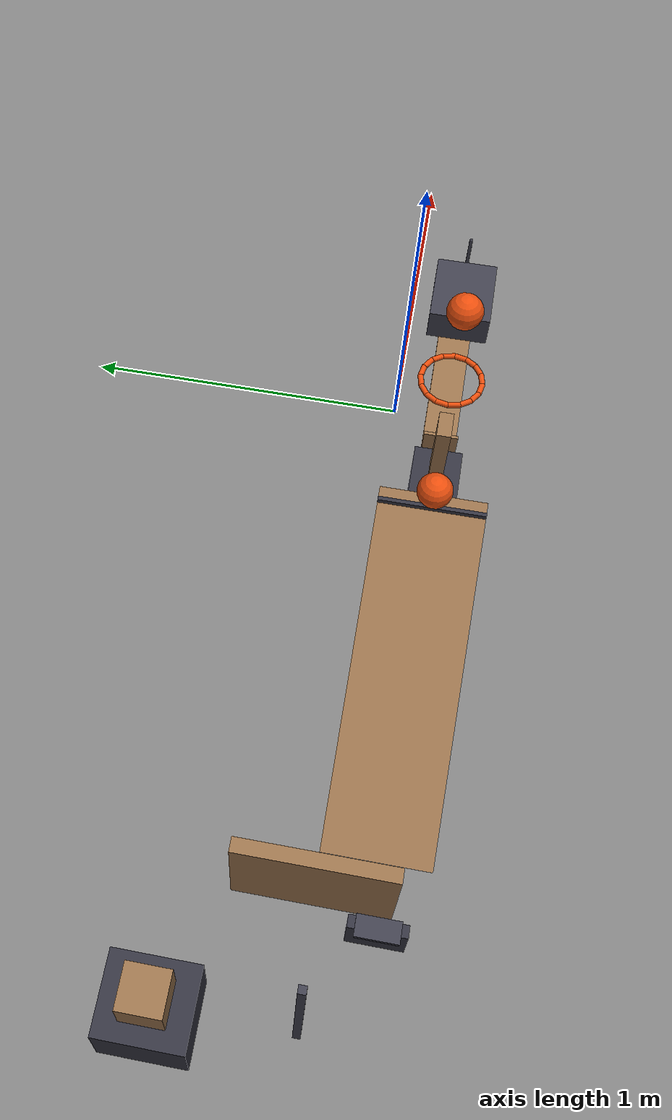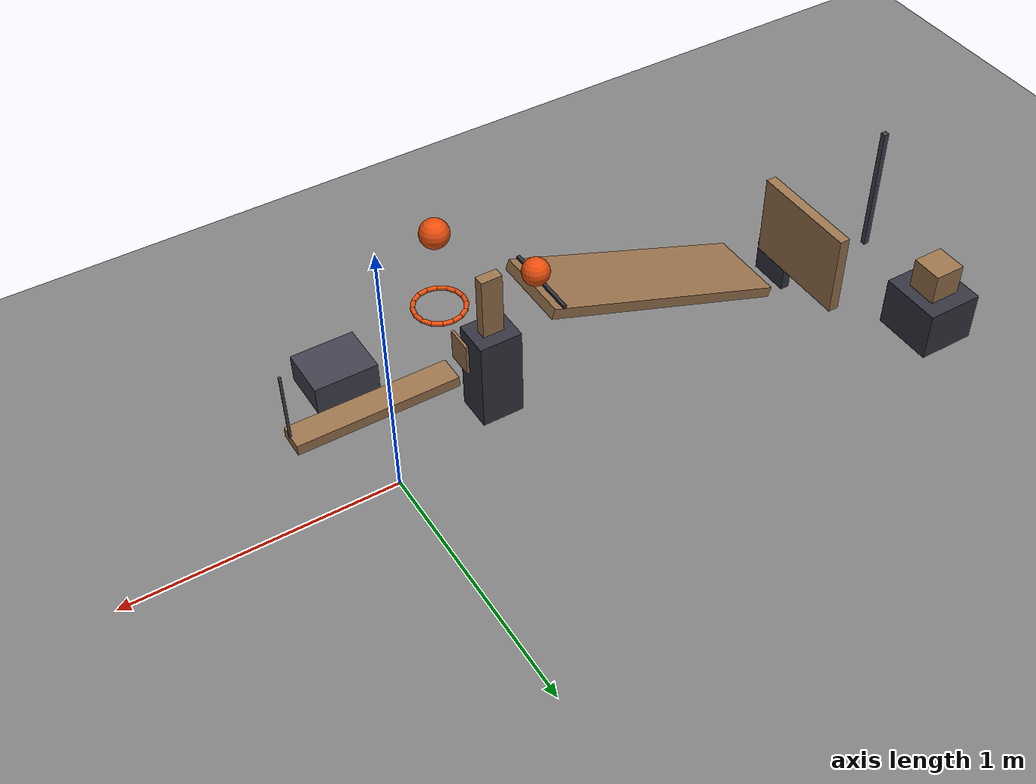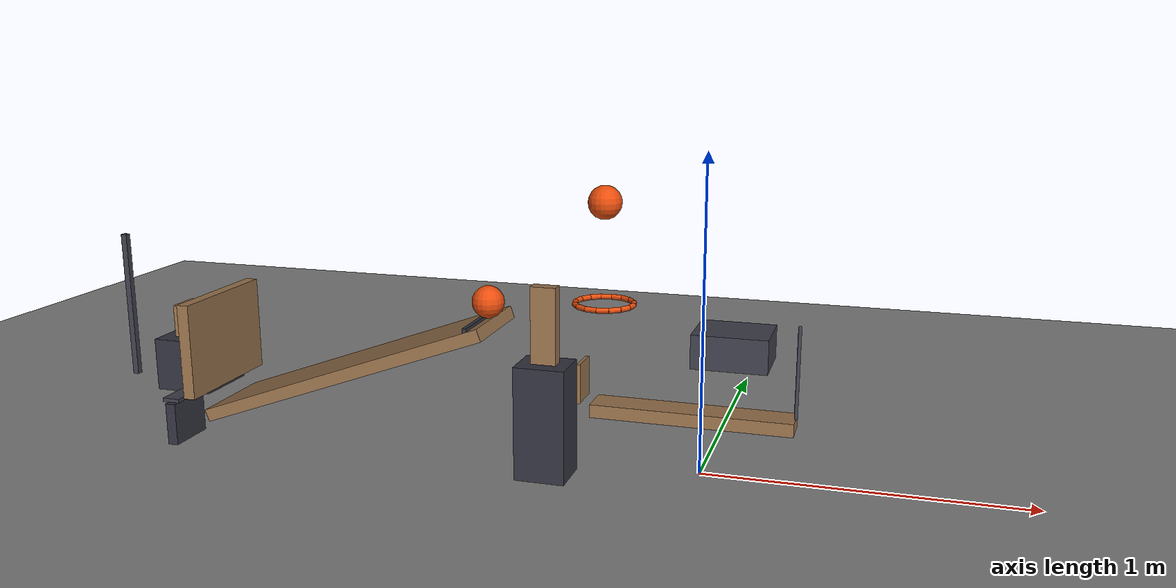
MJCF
<mujoco model="revised_gravity_driven_impact_chain">
  <compiler angle="radian"/>
  <option timestep="0.002"/>
  <worldbody>
    <geom name="floor" type="plane" size="6 6 0.1" friction="0.72 0 0"/>
    <body name="lever1" pos="0 -0.15 0.24">
      <joint name="lever_hinge" type="hinge" pos="0 0 0" axis="0 1 0" limited="true" range="-0.785398 0" damping="0.04"/>
      <geom name="lever1" type="box" pos="0 0 0" size="0.3 0.05 0.02" mass="0.485" friction="0.72 0 0" solref="0.01 0.715646" rgba="0.6 0.45 0.3 1"/>
      <geom name="lever striker" type="capsule" size="0.005" fromto="0.3 0 0.02 0.3 0 0.29" mass="0.01" friction="0.72 0 0" solref="0.01 0.715646" rgba="0.25 0.25 0.3 1"/>
      <geom name="lever retaining lip" type="box" pos="-0.335 0 0.08" size="0.005 0.05 0.06" mass="0.005" friction="0.72 0 0" solref="0.01 0.715646" rgba="0.6 0.45 0.3 1"/>
    </body>
    <body name="ring1">
      <geom name="ring1_00" type="capsule" size="0.008" fromto="-0.182 -0.15 0.56 -0.188699 -0.116324 0.56" friction="0.72 0 0" solref="0.01 0.715646" rgba="0.9 0.3 0.05 1"/>
      <geom name="ring1_01" type="capsule" size="0.008" fromto="-0.188699 -0.116324 0.56 -0.207775 -0.0877746 0.56" friction="0.72 0 0" solref="0.01 0.715646" rgba="0.9 0.3 0.05 1"/>
      <geom name="ring1_02" type="capsule" size="0.008" fromto="-0.207775 -0.0877746 0.56 -0.236324 -0.0686986 0.56" friction="0.72 0 0" solref="0.01 0.715646" rgba="0.9 0.3 0.05 1"/>
      <geom name="ring1_03" type="capsule" size="0.008" fromto="-0.236324 -0.0686986 0.56 -0.27 -0.062 0.56" friction="0.72 0 0" solref="0.01 0.715646" rgba="0.9 0.3 0.05 1"/>
      <geom name="ring1_04" type="capsule" size="0.008" fromto="-0.27 -0.062 0.56 -0.303676 -0.0686986 0.56" friction="0.72 0 0" solref="0.01 0.715646" rgba="0.9 0.3 0.05 1"/>
      <geom name="ring1_05" type="capsule" size="0.008" fromto="-0.303676 -0.0686986 0.56 -0.332225 -0.0877746 0.56" friction="0.72 0 0" solref="0.01 0.715646" rgba="0.9 0.3 0.05 1"/>
      <geom name="ring1_06" type="capsule" size="0.008" fromto="-0.332225 -0.0877746 0.56 -0.351301 -0.116324 0.56" friction="0.72 0 0" solref="0.01 0.715646" rgba="0.9 0.3 0.05 1"/>
      <geom name="ring1_07" type="capsule" size="0.008" fromto="-0.351301 -0.116324 0.56 -0.358 -0.15 0.56" friction="0.72 0 0" solref="0.01 0.715646" rgba="0.9 0.3 0.05 1"/>
      <geom name="ring1_08" type="capsule" size="0.008" fromto="-0.358 -0.15 0.56 -0.351301 -0.183676 0.56" friction="0.72 0 0" solref="0.01 0.715646" rgba="0.9 0.3 0.05 1"/>
      <geom name="ring1_09" type="capsule" size="0.008" fromto="-0.351301 -0.183676 0.56 -0.332225 -0.212225 0.56" friction="0.72 0 0" solref="0.01 0.715646" rgba="0.9 0.3 0.05 1"/>
      <geom name="ring1_10" type="capsule" size="0.008" fromto="-0.332225 -0.212225 0.56 -0.303676 -0.231301 0.56" friction="0.72 0 0" solref="0.01 0.715646" rgba="0.9 0.3 0.05 1"/>
      <geom name="ring1_11" type="capsule" size="0.008" fromto="-0.303676 -0.231301 0.56 -0.27 -0.238 0.56" friction="0.72 0 0" solref="0.01 0.715646" rgba="0.9 0.3 0.05 1"/>
      <geom name="ring1_12" type="capsule" size="0.008" fromto="-0.27 -0.238 0.56 -0.236324 -0.231301 0.56" friction="0.72 0 0" solref="0.01 0.715646" rgba="0.9 0.3 0.05 1"/>
      <geom name="ring1_13" type="capsule" size="0.008" fromto="-0.236324 -0.231301 0.56 -0.207775 -0.212225 0.56" friction="0.72 0 0" solref="0.01 0.715646" rgba="0.9 0.3 0.05 1"/>
      <geom name="ring1_14" type="capsule" size="0.008" fromto="-0.207775 -0.212225 0.56 -0.188699 -0.183676 0.56" friction="0.72 0 0" solref="0.01 0.715646" rgba="0.9 0.3 0.05 1"/>
      <geom name="ring1_15" type="capsule" size="0.008" fromto="-0.188699 -0.183676 0.56 -0.182 -0.15 0.56" friction="0.72 0 0" solref="0.01 0.715646" rgba="0.9 0.3 0.05 1"/>
    </body>
    <body name="ball1" pos="-0.27 -0.15 0.86">
      <freejoint/>
      <geom name="ball1" type="sphere" pos="0 0 0" size="0.05" mass="0.2" condim="6" friction="0.72 0 0" solref="0.01 0.715646" rgba="0.9 0.3 0.05 1"/>
    </body>
    <body name="cart1" pos="0.115 -0.15 0.46">
      <joint name="cart_track" type="slide" pos="0 0 0" axis="1 0 0" limited="true" range="-0.5 0" damping="0.2"/>
      <geom name="cart1" type="box" pos="0 0 0" size="0.11 0.09 0.05" mass="0.5" friction="0.72 0 0" solref="0.01 0.715646" rgba="0.25 0.25 0.3 1"/>
    </body>
    <body name="domino plinth">
      <geom name="domino plinth" type="box" pos="-0.455 -0.15 0.18" size="0.08 0.07 0.18" friction="0.72 0 0" solref="0.01 0.715646" rgba="0.2 0.2 0.25 1"/>
    </body>
    <body name="domino1" pos="-0.455 -0.15 0.48">
      <freejoint/>
      <geom name="domino1" type="box" pos="0 0 0" size="0.04 0.02 0.12" mass="0.25" friction="0.72 0 0" solref="0.01 0.715646" rgba="0.6 0.45 0.3 1"/>
    </body>
    <body name="ramp1">
      <geom name="ramp1" type="box" pos="-1.0809 -0.15 0.302216" size="0.5 0.15 0.02" euler="0 2.79253 0" friction="0.72 0 0" solref="0.01 0.715646" rgba="0.6 0.45 0.3 1"/>
    </body>
    <body name="ramp ball retainer">
      <geom name="ramp ball retainer" type="box" pos="-0.6555 -0.15 0.484154" size="0.006 0.15 0.007" friction="0.72 0 0" solref="0.01 0.715646" rgba="0.2 0.2 0.25 1"/>
    </body>
    <body name="ball2" pos="-0.635 -0.15 0.539005">
      <freejoint/>
      <geom name="ball2" type="sphere" pos="0 0 0" size="0.05" mass="0.2" condim="6" friction="0.72 0 0" solref="0.01 0.715646" rgba="0.9 0.3 0.05 1"/>
    </body>
    <body name="door latch ledge">
      <geom name="door latch ledge" type="box" pos="-1.71759 -0.18 0.07" size="0.0175 0.08 0.07" friction="0.72 0 0" solref="0.01 0.715646" rgba="0.2 0.2 0.25 1"/>
    </body>
    <body name="door latch" pos="-1.72759 -0.18 0.146">
      <freejoint/>
      <geom name="door latch" type="box" pos="0 0 0" size="0.03 0.06 0.006" mass="1.65" friction="0.72 0 0" solref="0.01 0.715646" rgba="0.25 0.25 0.3 1"/>
    </body>
    <body name="door1" pos="-1.67759 0.21 0.305">
      <joint name="door_hinge" type="hinge" pos="0 0 0" axis="0 0 1" limited="true" range="-1.22173 0" stiffness="3" springref="-1.22173" damping="0.04"/>
      <geom name="door1" type="box" pos="0 -0.21 0" size="0.02 0.21 0.16" mass="0.45" friction="0.72 0 0" solref="0.01 0.715646" rgba="0.6 0.45 0.3 1"/>
    </body>
    <body name="pendulum1" pos="-2.01759 -0.02 0.65">
      <joint name="pendulum_hinge" type="hinge" pos="0 0 0" axis="1 0 0" limited="true" range="0 0.663225" damping="0.04"/>
      <geom name="pendulum1" type="box" pos="0 0 -0.25" size="0.01 0.01 0.25" mass="0.35" friction="0.72 0 0" solref="0.01 0.715646" rgba="0.25 0.25 0.3 1"/>
    </body>
    <body name="block plinth">
      <geom name="block plinth" type="box" pos="-2.01759 0.3545 0.0979973" size="0.11 0.12 0.0979973" friction="0.72 0 0" solref="0.01 0.715646" rgba="0.2 0.2 0.25 1"/>
    </body>
    <body name="block1" pos="-2.01759 0.3545 0.255995">
      <freejoint/>
      <geom name="block1" type="box" pos="0 0 0" size="0.06 0.06 0.06" mass="0.35" friction="0.72 0 0" solref="0.01 0.715646" rgba="0.6 0.45 0.3 1"/>
    </body>
  </worldbody>
  <keyframe>
    <key name="start" qpos="0 -0.27 -0.15 0.86 1 0 0 0 0 -0.455 -0.15 0.48 1 0 0 0 -0.635 -0.15 0.539005 1 0 0 0 -1.72759 -0.18 0.146 1 0 0 0 0 0 -2.01759 0.3545 0.255995 1 0 0 0" qvel="0 0 0 0 0 0 0 0 0 0 0 0 0 0 0 0 0 0 0 0 0 0 0 0 0 0 0 0 0 0 0 0 0 0"/>
  </keyframe>
</mujoco>
